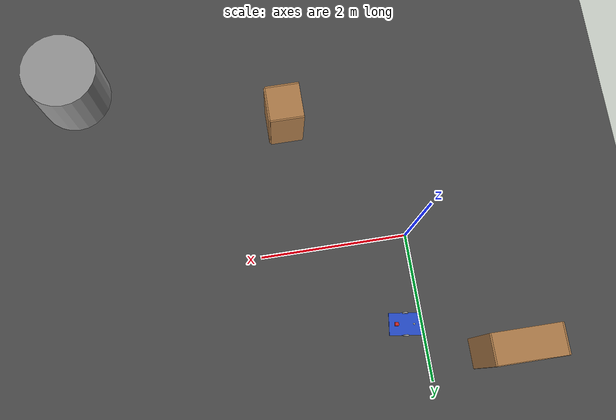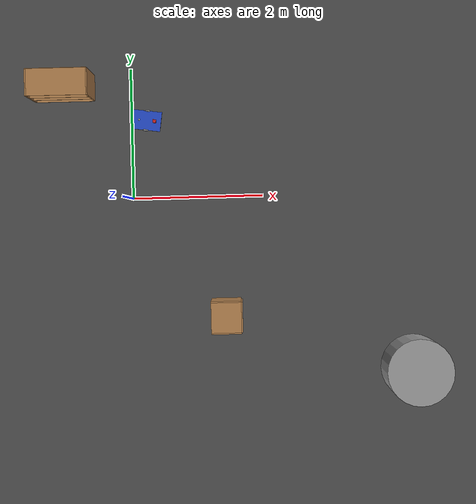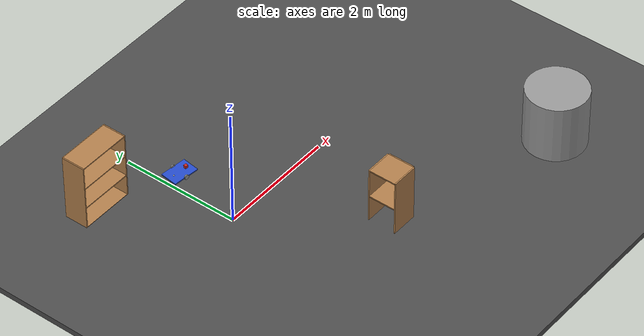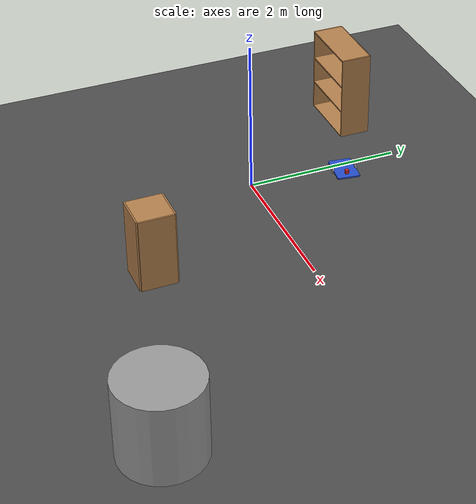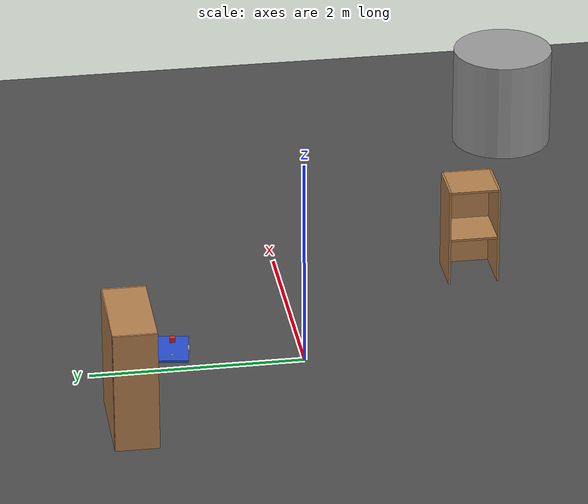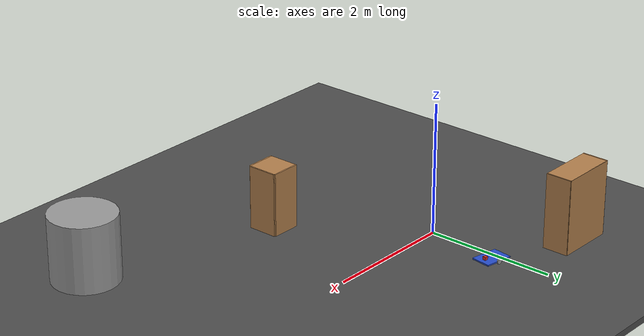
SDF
<sdf version="1.6">
 <world name="default">
  <light name="sun" type="directional">
   <pose>0 0 10 0 -0 0</pose>
   <diffuse>0.8 0.8 0.8 1</diffuse>
   <specular>0.1 0.1 0.1 1</specular>
   <attenuation>
    <range>1000</range>
    <constant>0.9</constant>
    <linear>0.01</linear>
    <quadratic>0.001</quadratic>
   </attenuation>
   <direction>-0.5 0.5 -1</direction>
  </light>
  <model name="ground_plane">
   <static>1</static>
   <link name="link">
    <collision name="collision">
     <geometry><plane><normal>0 0 1</normal><size>100 100</size></plane></geometry>
     <surface><friction><ode><mu>100</mu><mu2>50</mu2></ode></friction></surface>
    </collision>
    <visual name="visual">
     <cast_shadows>0</cast_shadows>
     <geometry><plane><normal>0 0 1</normal><size>100 100</size></plane></geometry>
     <material>
      <script><uri>file://media/materials/scripts/gazebo.material</uri><name>Gazebo/Grey</name></script>
     </material>
    </visual>
   </link>
  </model>
  <gravity>0 0 -9.8</gravity>
  <magnetic_field>6e-06 2.3e-05 -4.2e-05</magnetic_field>
  <atmosphere type="adiabatic"/>
  <physics name="default_physics" default="0" type="ode">
   <max_step_size>0.001</max_step_size>
   <real_time_factor>1</real_time_factor>
   <real_time_update_rate>1000</real_time_update_rate>
  </physics>
  <scene><ambient>0.4 0.4 0.4 1</ambient><background>0.7 0.7 0.7 1</background><shadows>1</shadows></scene>
  <spherical_coordinates>
   <surface_model>EARTH_WGS84</surface_model>
   <latitude_deg>0</latitude_deg>
   <longitude_deg>0</longitude_deg>
   <elevation>0</elevation>
   <heading_deg>0</heading_deg>
  </spherical_coordinates>
  <model name="unit_cylinder_0">
   <pose>4.26711 -2.69729 0.54999 0 -0 8e-06</pose>
   <link name="link">
    <inertial>
     <mass>1</mass>
     <inertia><ixx>0.145833</ixx><ixy>0</ixy><ixz>0</ixz><iyy>0.145833</iyy><iyz>0</iyz><izz>0.125</izz></inertia>
    </inertial>
    <collision name="collision">
     <geometry><cylinder><radius>0.5</radius><length>1</length></cylinder></geometry>
    </collision>
    <visual name="visual">
     <geometry><cylinder><radius>0.5</radius><length>1</length></cylinder></geometry>
     <material>
      <script><name>Gazebo/Grey</name><uri>file://media/materials/scripts/gazebo.material</uri></script>
     </material>
    </visual>
   </link>
  </model>
  <model name="bookshelf">
   <static>1</static>
   <link name="link">
    <inertial><mass>1</mass></inertial>
    <collision name="back">
     <pose>0 0.005 0.6 0 -0 0</pose>
     <geometry><box><size>0.9 0.01 1.2</size></box></geometry>
    </collision>
    <visual name="visual1">
     <pose>0 0.005 0.6 0 -0 0</pose>
     <geometry><box><size>0.9 0.01 1.2</size></box></geometry>
     <material>
      <script><uri>file://media/materials/scripts/gazebo.material</uri><name>Gazebo/Wood</name></script>
     </material>
    </visual>
    <collision name="left_side">
     <pose>0.45 -0.195 0.6 0 -0 0</pose>
     <geometry><box><size>0.02 0.4 1.2</size></box></geometry>
    </collision>
    <visual name="visual2">
     <pose>0.45 -0.195 0.6 0 -0 0</pose>
     <geometry><box><size>0.02 0.4 1.2</size></box></geometry>
     <material>
      <script><uri>file://media/materials/scripts/gazebo.material</uri><name>Gazebo/Wood</name></script>
     </material>
    </visual>
    <collision name="right_side">
     <pose>-0.45 -0.195 0.6 0 -0 0</pose>
     <geometry><box><size>0.02 0.4 1.2</size></box></geometry>
    </collision>
    <visual name="visual3">
     <pose>-0.45 -0.195 0.6 0 -0 0</pose>
     <geometry><box><size>0.02 0.4 1.2</size></box></geometry>
     <material>
      <script><uri>file://media/materials/scripts/gazebo.material</uri><name>Gazebo/Wood</name></script>
     </material>
    </visual>
    <collision name="bottom">
     <pose>0 -0.195 0.03 0 -0 0</pose>
     <geometry><box><size>0.88 0.4 0.06</size></box></geometry>
    </collision>
    <visual name="visual4">
     <pose>0 -0.195 0.03 0 -0 0</pose>
     <geometry><box><size>0.88 0.4 0.06</size></box></geometry>
     <material>
      <script><uri>file://media/materials/scripts/gazebo.material</uri><name>Gazebo/Wood</name></script>
     </material>
    </visual>
    <collision name="top">
     <pose>0 -0.195 1.19 0 -0 0</pose>
     <geometry><box><size>0.88 0.4 0.02</size></box></geometry>
    </collision>
    <visual name="visual5">
     <pose>0 -0.195 1.19 0 -0 0</pose>
     <geometry><box><size>0.88 0.4 0.02</size></box></geometry>
     <material>
      <script><uri>file://media/materials/scripts/gazebo.material</uri><name>Gazebo/Wood</name></script>
     </material>
    </visual>
    <collision name="low_shelf">
     <pose>0 -0.195 0.43 0 -0 0</pose>
     <geometry><box><size>0.88 0.4 0.02</size></box></geometry>
    </collision>
    <visual name="visual6">
     <pose>0 -0.195 0.43 0 -0 0</pose>
     <geometry><box><size>0.88 0.4 0.02</size></box></geometry>
     <material>
      <script><uri>file://media/materials/scripts/gazebo.material</uri><name>Gazebo/Wood</name></script>
     </material>
    </visual>
    <collision name="high_shelf">
     <pose>0 -0.195 0.8 0 -0 0</pose>
     <geometry><box><size>0.88 0.4 0.02</size></box></geometry>
    </collision>
    <visual name="visual7">
     <pose>0 -0.195 0.8 0 -0 0</pose>
     <geometry><box><size>0.88 0.4 0.02</size></box></geometry>
     <material>
      <script><uri>file://media/materials/scripts/gazebo.material</uri><name>Gazebo/Wood</name></script>
     </material>
    </visual>
   </link>
   <pose>-1.01924 1.91832 0 0 -0 0</pose>
  </model>
  <model name="asphalt_plane">
   <static>1</static>
   <link name="link">
    <collision name="collision"><geometry><box><size>20 20 0.1</size></box></geometry></collision>
    <visual name="visual">
     <cast_shadows>0</cast_shadows>
     <geometry><box><size>20 20 0.1</size></box></geometry>
     <material>
      <script>
       <uri>model://asphalt_plane/materials/scripts</uri>
       <uri>model://asphalt_plane/materials/textures</uri>
       <name>vrc/asphalt</name>
      </script>
     </material>
    </visual>
   </link>
   <pose>-0.152467 0.643132 0 0 -0 0</pose>
  </model>
  <model name="cabinet">
   <static>1</static>
   <link name="cabinet_bottom_plate">
    <inertial>
     <pose>0 0 -1 0 -0 0</pose>
     <inertia><ixx>2.05</ixx><ixy>0</ixy><ixz>0</ixz><iyy>2.05</iyy><iyz>0</iyz><izz>2.05</izz></inertia>
     <mass>25</mass>
    </inertial>
    <collision name="cabinet_bottom_plate_geom">
     <pose>0 0 0.01 0 -0 0</pose>
     <geometry><box><size>0.45 0.45 0.02</size></box></geometry>
    </collision>
    <visual name="cabinet_bottom_plate_geom_visual">
     <pose>0 0 0.01 0 -0 0</pose>
     <geometry><box><size>0.45 0.45 0.02</size></box></geometry>
     <material>
      <script><uri>file://media/materials/scripts/gazebo.material</uri><name>Gazebo/Wood</name></script>
     </material>
    </visual>
    <collision name="cabinet_bottom_plate_geom_cabinet_back_plate">
     <pose>0.235 0 0.51 0 -0 0</pose>
     <geometry><box><size>0.02 0.45 1.02</size></box></geometry>
    </collision>
    <visual name="cabinet_bottom_plate_geom_cabinet_back_plate_visual">
     <pose>0.235 0 0.51 0 -0 0</pose>
     <geometry><box><size>0.02 0.45 1.02</size></box></geometry>
     <material>
      <script><uri>file://media/materials/scripts/gazebo.material</uri><name>Gazebo/Wood</name></script>
     </material>
    </visual>
    <collision name="cabinet_bottom_plate_geom_cabinet_left_plate">
     <pose>0 0.235 0.51 0 -0 0</pose>
     <geometry><box><size>0.45 0.02 1.02</size></box></geometry>
    </collision>
    <visual name="cabinet_bottom_plate_geom_cabinet_left_plate_visual">
     <pose>0 0.235 0.51 0 -0 0</pose>
     <geometry><box><size>0.45 0.02 1.02</size></box></geometry>
     <material>
      <script><uri>file://media/materials/scripts/gazebo.material</uri><name>Gazebo/Wood</name></script>
     </material>
    </visual>
    <collision name="cabinet_bottom_plate_geom_cabinet_middle_plate">
     <pose>0 0 0.51 0 -0 0</pose>
     <geometry><box><size>0.45 0.45 0.02</size></box></geometry>
    </collision>
    <visual name="cabinet_bottom_plate_geom_cabinet_middle_plate_visual">
     <pose>0 0 0.51 0 -0 0</pose>
     <geometry><box><size>0.45 0.45 0.02</size></box></geometry>
     <material>
      <script><uri>file://media/materials/scripts/gazebo.material</uri><name>Gazebo/Wood</name></script>
     </material>
    </visual>
    <collision name="cabinet_bottom_plate_geom_cabinet_right_plate">
     <pose>0 -0.235 0.51 0 -0 0</pose>
     <geometry><box><size>0.45 0.02 1.02</size></box></geometry>
    </collision>
    <visual name="cabinet_bottom_plate_geom_cabinet_right_plate_visual">
     <pose>0 -0.235 0.51 0 -0 0</pose>
     <geometry><box><size>0.45 0.02 1.02</size></box></geometry>
     <material>
      <script><uri>file://media/materials/scripts/gazebo.material</uri><name>Gazebo/Wood</name></script>
     </material>
    </visual>
    <collision name="cabinet_bottom_plate_geom_cabinet_top_plate">
     <pose>0 0 1.01 0 -0 0</pose>
     <geometry><box><size>0.45 0.45 0.02</size></box></geometry>
    </collision>
    <visual name="cabinet_bottom_plate_geom_cabinet_top_plate_visual">
     <pose>0 0 1.01 0 -0 0</pose>
     <geometry><box><size>0.45 0.45 0.02</size></box></geometry>
     <material>
      <script><uri>file://media/materials/scripts/gazebo.material</uri><name>Gazebo/Wood</name></script>
     </material>
    </visual>
   </link>
   <pose>1.40321 -1.81513 0 0 -0 0</pose>
  </model>
  <model name="my_robot">
   <link name="base_footprint">
    <inertial>
     <pose>-0.001667 0 0.041333 0 -0 0</pose>
     <mass>6.0001</mass>
     <inertia>
      <ixx>0.0304462</ixx>
      <ixy>0</ixy>
      <ixz>0.000191674</ixz>
      <iyy>0.0461545</iyy>
      <iyz>0</iyz>
      <izz>0.0740583</izz>
     </inertia>
    </inertial>
    <collision name="base_footprint_fixed_joint_lump__base_link_collision">
     <pose>0 0 0.04 0 -0 0</pose>
     <geometry><cylinder><length>0.02</length><radius>0.15</radius></cylinder></geometry>
    </collision>
    <collision name="base_footprint_fixed_joint_lump__caster_back_link_collision_1">
     <pose>-0.135 0 0.029 0 -0 0</pose>
     <geometry><sphere><radius>0.025</radius></sphere></geometry>
    </collision>
    <collision name="base_footprint_fixed_joint_lump__caster_front_link_collision_2">
     <pose>0.115 0 0.027 0 -0 0</pose>
     <geometry><sphere><radius>0.025</radius></sphere></geometry>
    </collision>
    <visual name="base_footprint_visual">
     <geometry><box><size>0.001 0.001 0.001</size></box></geometry>
     <material><script><uri>__default__</uri><name>__default__</name></script></material>
    </visual>
    <visual name="base_footprint_fixed_joint_lump__base_link_visual_1">
     <pose>0 0 0.04 0 -0 0</pose>
     <geometry><box><size>0.45 0.3 0.02</size></box></geometry>
     <material>
      <script><name>Gazebo/Blue</name><uri>file://media/materials/scripts/gazebo.material</uri></script>
     </material>
    </visual>
    <visual name="base_footprint_fixed_joint_lump__caster_back_link_visual_2">
     <pose>-0.115 0 0.029 0 -0 0</pose>
     <geometry><sphere><radius>0.025</radius></sphere></geometry>
     <material><script><uri>__default__</uri><name>__default__</name></script></material>
    </visual>
    <visual name="base_footprint_fixed_joint_lump__caster_front_link_visual_3">
     <pose>0.115 0 0.027 0 -0 0</pose>
     <geometry><sphere><radius>0.025</radius></sphere></geometry>
     <material><script><uri>__default__</uri><name>__default__</name></script></material>
    </visual>
    <visual name="base_footprint_fixed_joint_lump__hokuyo_link_visual_4">
     <pose>0.125 0 0.0725 0 -0 0</pose>
     <geometry><box><size>0.05 0.05 0.05</size></box></geometry>
     <material>
      <script><name>Gazebo/Red</name><uri>file://media/materials/scripts/gazebo.material</uri></script>
     </material>
    </visual>
    <sensor name="head_hokuyo_sensor" type="ray">
     <visualize>0</visualize>
     <update_rate>40</update_rate>
     <ray>
      <scan>
       <horizontal>
        <samples>720</samples>
        <resolution>1</resolution>
        <min_angle>-1.5708</min_angle>
        <max_angle>1.5708</max_angle>
       </horizontal>
       <vertical><samples>1</samples><min_angle>0</min_angle><max_angle>0</max_angle></vertical>
      </scan>
      <range><min>0.1</min><max>10</max><resolution>0.001</resolution></range>
     </ray>
     <plugin name="gazebo_ros_head_hokuyo_controller" filename="libgazebo_ros_laser.so">
      <topicName>/scan</topicName>
      <frameName>hokuyo_link</frameName>
      <robotNamespace>/</robotNamespace>
     </plugin>
     <pose>0.125 0 0.0725 0 -0 0</pose>
    </sensor>
   </link>
   <link name="front_left_wheel">
    <pose>0 -0.15 0.04 0 -0 0</pose>
    <inertial>
     <mass>2.5</mass>
     <inertia>
      <ixx>0.00108333</ixx>
      <ixy>0</ixy>
      <ixz>0</ixz>
      <iyy>0.00108333</iyy>
      <iyz>0</iyz>
      <izz>0.002</izz>
     </inertia>
    </inertial>
    <collision name="front_left_wheel_collision">
     <pose>0 0 0 1.5708 -0 0</pose>
     <geometry><cylinder><length>0.02</length><radius>0.04</radius></cylinder></geometry>
     <surface>
      <contact><ode><kp>1e+07</kp><kd>1</kd></ode></contact>
      <friction><ode><mu>1</mu><mu2>1</mu2><fdir1>1 0 0</fdir1></ode></friction>
     </surface>
    </collision>
    <visual name="front_left_wheel_visual">
     <pose>0 0 0 1.5708 -0 0</pose>
     <geometry><cylinder><length>0.02</length><radius>0.04</radius></cylinder></geometry>
     <material>
      <script><name>Gazebo/Grey</name><uri>file://media/materials/scripts/gazebo.material</uri></script>
     </material>
    </visual>
   </link>
   <joint name="front_left_wheel_joint" type="revolute">
    <child>front_left_wheel</child>
    <parent>base_footprint</parent>
    <axis>
     <xyz>0 1 0</xyz>
     <limit><lower>-1e+16</lower><upper>1e+16</upper></limit>
     <dynamics><spring_reference>0</spring_reference><spring_stiffness>0</spring_stiffness></dynamics>
     <use_parent_model_frame>1</use_parent_model_frame>
    </axis>
   </joint>
   <link name="front_right_wheel">
    <pose>0 0.15 0.04 0 -0 0</pose>
    <inertial>
     <mass>2.5</mass>
     <inertia>
      <ixx>0.00108333</ixx>
      <ixy>0</ixy>
      <ixz>0</ixz>
      <iyy>0.00108333</iyy>
      <iyz>0</iyz>
      <izz>0.002</izz>
     </inertia>
    </inertial>
    <collision name="front_right_wheel_collision">
     <pose>0 0 0 1.5708 -0 0</pose>
     <geometry><cylinder><length>0.02</length><radius>0.04</radius></cylinder></geometry>
     <surface>
      <contact><ode><kp>1e+07</kp><kd>1</kd></ode></contact>
      <friction><ode><mu>1</mu><mu2>1</mu2><fdir1>1 0 0</fdir1></ode></friction>
     </surface>
    </collision>
    <visual name="front_right_wheel_visual">
     <pose>0 0 0 1.5708 -0 0</pose>
     <geometry><cylinder><length>0.02</length><radius>0.04</radius></cylinder></geometry>
     <material>
      <script><name>Gazebo/Grey</name><uri>file://media/materials/scripts/gazebo.material</uri></script>
     </material>
    </visual>
   </link>
   <joint name="front_right_wheel_joint" type="revolute">
    <child>front_right_wheel</child>
    <parent>base_footprint</parent>
    <axis>
     <xyz>0 1 0</xyz>
     <limit><lower>-1e+16</lower><upper>1e+16</upper></limit>
     <dynamics><spring_reference>0</spring_reference><spring_stiffness>0</spring_stiffness></dynamics>
     <use_parent_model_frame>1</use_parent_model_frame>
    </axis>
   </joint>
   <static>0</static>
   <plugin name="differential_drive_controller" filename="libgazebo_ros_diff_drive.so">
    <legacyMode>true</legacyMode>
    <rosDebugLevel>Debug</rosDebugLevel>
    <publishWheelTF>false</publishWheelTF>
    <robotNamespace>/</robotNamespace>
    <publishTf>1</publishTf>
    <publishWheelJointState>false</publishWheelJointState>
    <alwaysOn>true</alwaysOn>
    <updateRate>100.0</updateRate>
    <leftJoint>front_left_wheel_joint</leftJoint>
    <rightJoint>front_right_wheel_joint</rightJoint>
    <wheelSeparation>0.3</wheelSeparation>
    <wheelDiameter>0.08</wheelDiameter>
    <broadcastTF>1</broadcastTF>
    <wheelTorque>30</wheelTorque>
    <wheelAcceleration>1.8</wheelAcceleration>
    <commandTopic>cmd_vel</commandTopic>
    <odometryFrame>odom</odometryFrame>
    <odometryTopic>odom</odometryTopic>
    <robotBaseFrame>base_footprint</robotBaseFrame>
   </plugin>
   <pose>0.23259 1.20313 0.050015 -0 -0.02965 -0.134187</pose>
  </model>
 </world>
</sdf>
